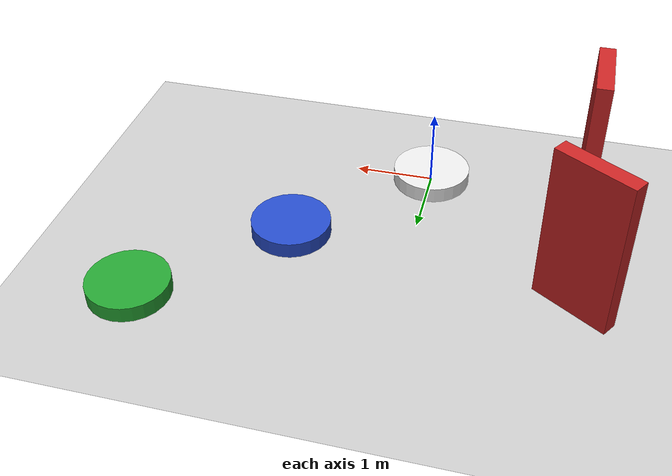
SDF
<?xml version="1.0" ?>
<sdf version="1.5">
  <world name="default">
    <!-- A global light source -->
    <include>
      <uri>model://sun</uri>
    </include>
    <!-- A ground plane -->
    <include>
      <uri>model://ground_plane</uri>
    </include>
    <!-- Ground regions -->
    <model name='region_start'>
      <pose frame=''>0.0 0.0 0.1 0 0 0</pose>
      <link name='link'>
        <collision name='collision'>
          <geometry>
            <cylinder>
              <radius>0.5</radius>
              <length>0.2</length>
            </cylinder>
          </geometry>
        </collision>
        <visual name='visual'>
          <geometry>
            <cylinder>
              <radius>0.5</radius>
              <length>0.2</length>
            </cylinder>
          </geometry>
          <material>
            <script>
              <name>Gazebo/White</name>
              <uri>file://media/materials/scripts/gazebo.material</uri>
            </script>
          </material>
        </visual>
      </link>
    </model>
    <model name='region0'>
      <pose frame=''>1.5 1.5 0.1 0 0 0</pose>
      <link name='link'>
        <collision name='collision'>
          <geometry>
            <cylinder>
              <radius>0.5</radius>
              <length>0.2</length>
            </cylinder>
          </geometry>
        </collision>
        <visual name='visual'>
          <geometry>
            <cylinder>
              <radius>0.5</radius>
              <length>0.2</length>
            </cylinder>
          </geometry>
          <material>
            <script>
              <name>Gazebo/Blue</name>
              <uri>file://media/materials/scripts/gazebo.material</uri>
            </script>
          </material>
        </visual>
      </link>
    </model>
    <model name='region_goal'>
      <pose frame=''>3.0 3.0 0.1 0 0 0</pose>
      <link name='link'>
        <collision name='collision'>
          <geometry>
            <cylinder>
              <radius>0.5</radius>
              <length>0.2</length>
            </cylinder>
          </geometry>
        </collision>
        <visual name='visual'>
          <geometry>
            <cylinder>
              <radius>0.5</radius>
              <length>0.2</length>
            </cylinder>
          </geometry>
          <material>
            <script>
              <name>Gazebo/Green</name>
              <uri>file://media/materials/scripts/gazebo.material</uri>
            </script>
          </material>
        </visual>
      </link>
    </model>
    <!-- Obstacles -->
    <model name='wall_00'>
      <pose frame=''>-2.0 0.0 1.0 0 0 0</pose>
      <link name='link'>
        <collision name='collision'>
          <geometry>
            <box>
              <size>0.2 1 2</size>
            </box>
          </geometry>
        </collision>
        <visual name='visual'>
          <geometry>
            <box>
              <size>0.2 1 2</size>
            </box>
          </geometry>
          <material>
            <script>
              <name>Gazebo/Red</name>
              <uri>file://media/materials/scripts/gazebo.material</uri>
            </script>
          </material>
        </visual>
      </link>
    </model>
    <model name='wall_01'>
      <pose frame=''>-2.0 2.0 1.0 0 0 1.0</pose>
      <link name='link'>
        <collision name='collision'>
          <geometry>
            <box>
              <size>0.2 1 2</size>
            </box>
          </geometry>
        </collision>
        <visual name='visual'>
          <geometry>
            <box>
              <size>0.2 1 2</size>
            </box>
          </geometry>
          <material>
            <script>
              <name>Gazebo/Red</name>
              <uri>file://media/materials/scripts/gazebo.material</uri>
            </script>
          </material>
        </visual>
      </link>
    </model>
  </world>
</sdf>
